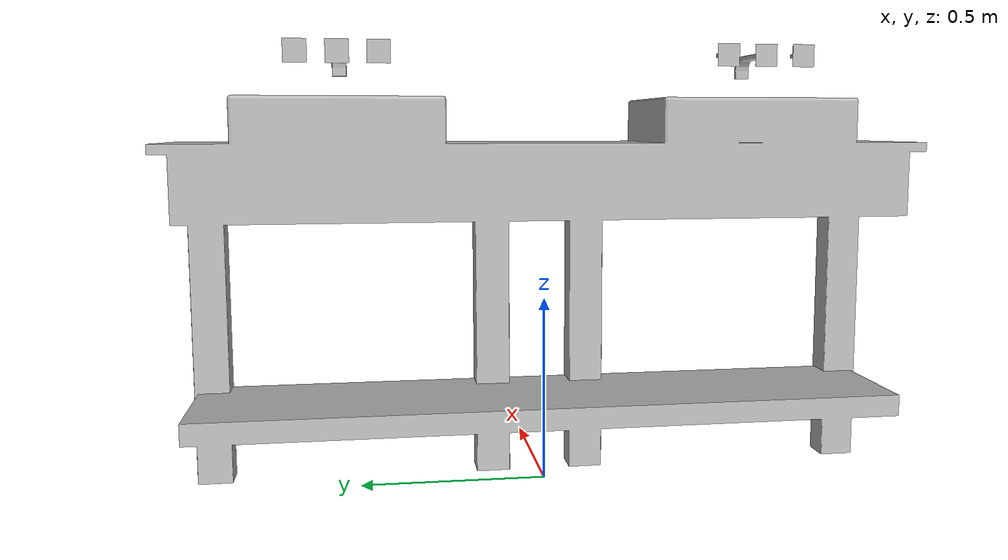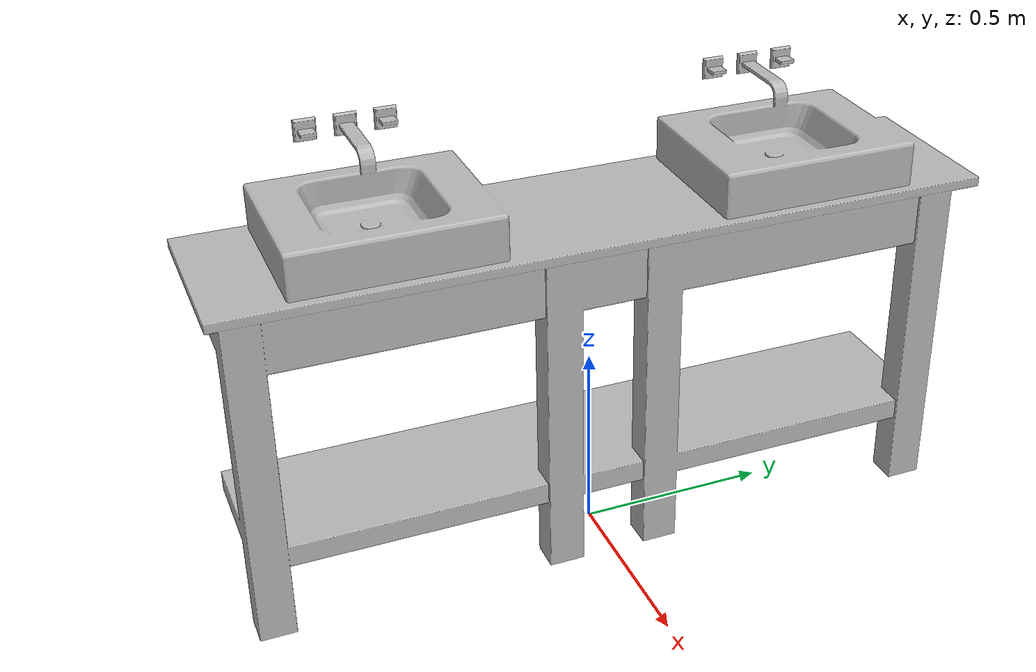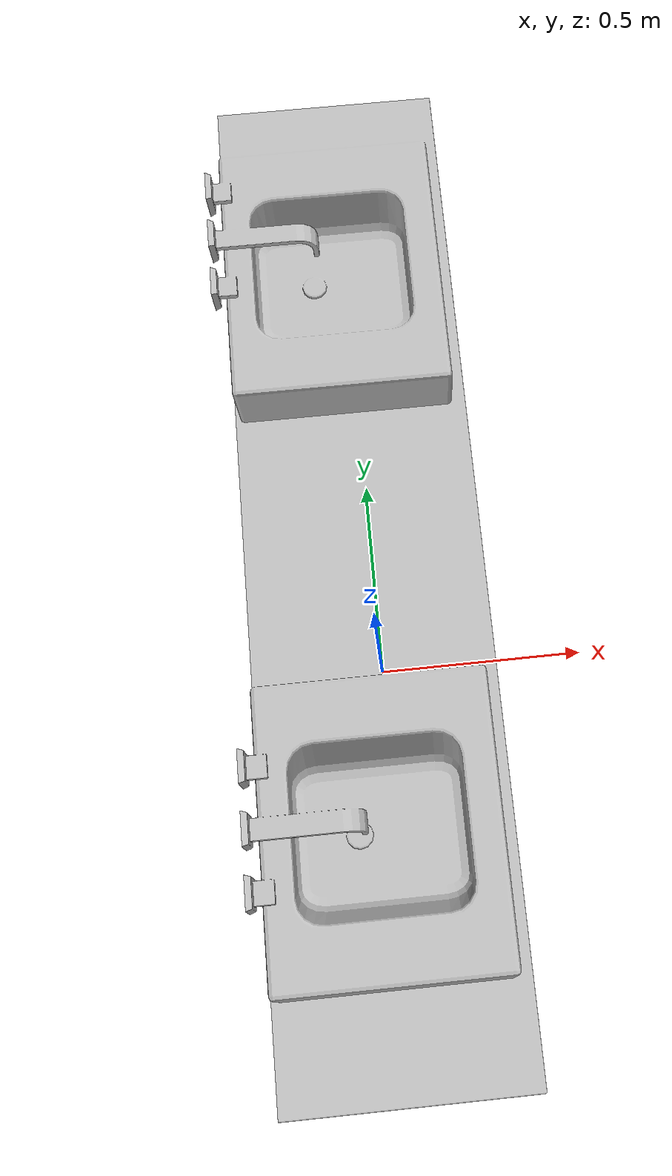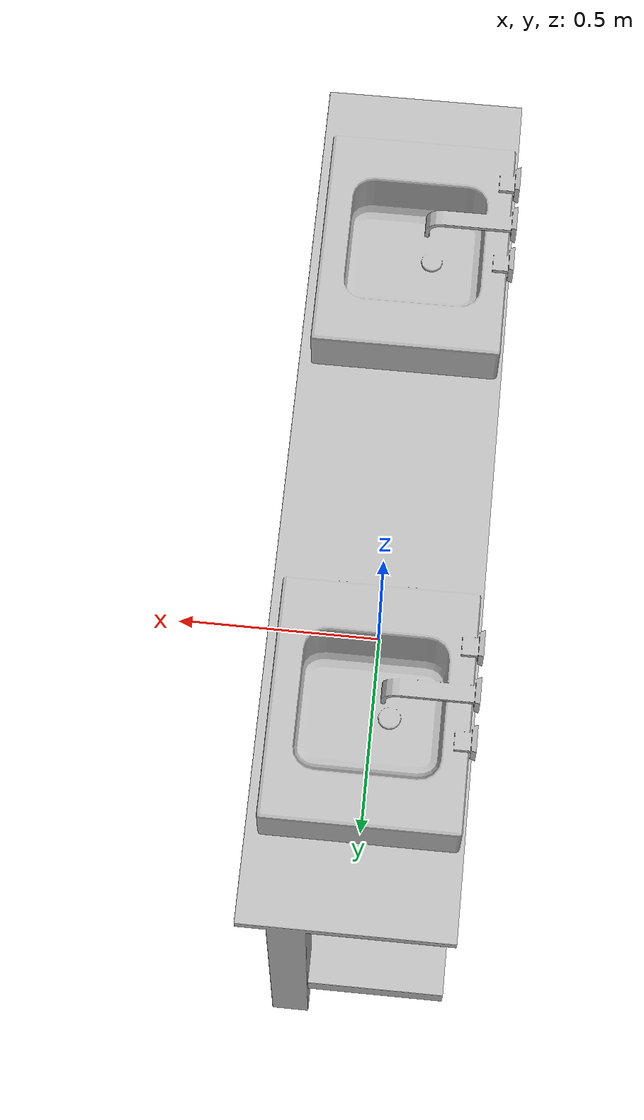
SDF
<?xml version='1.0'?>
<sdf version='1.4'>
  <model name='s__1943'>
    <pose>0 0 0 0 0 0</pose>
    <static>true</static>
    <link name='link'>
      <collision name='collision'>
        <pose>0 0 0 0 0 0</pose>
        <geometry>
          <box>
            <size>0.440002 1.95 2</size>
          </box>
        </geometry>
      </collision>
      <visual name='visual'>
        <pose>0 0 0 0 0 0</pose>
        <geometry>
          <mesh><uri>model://s__1943/s__1943.dae</uri></mesh>
        </geometry>
      </visual>
    </link>
  </model>
</sdf>
